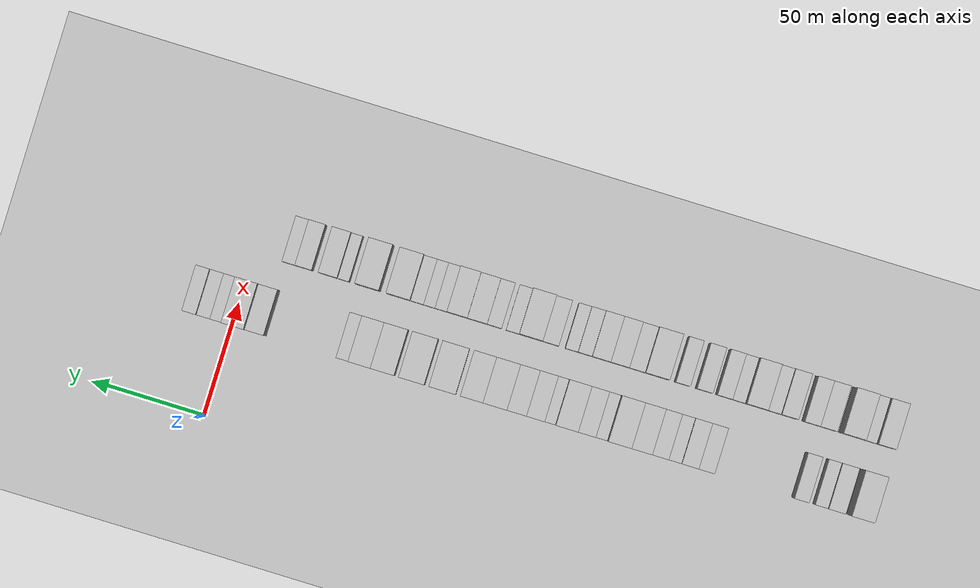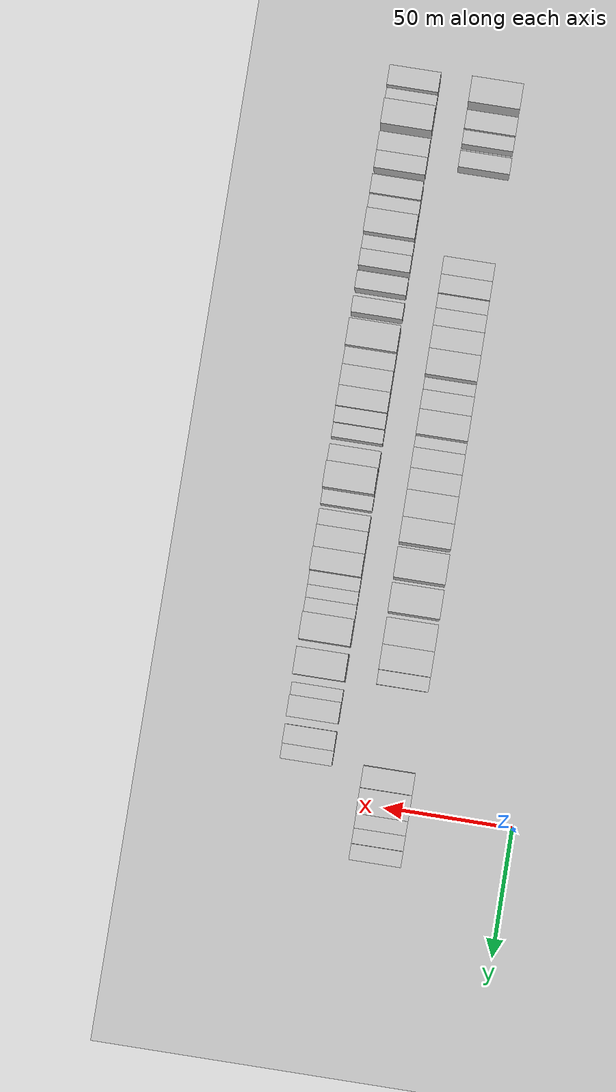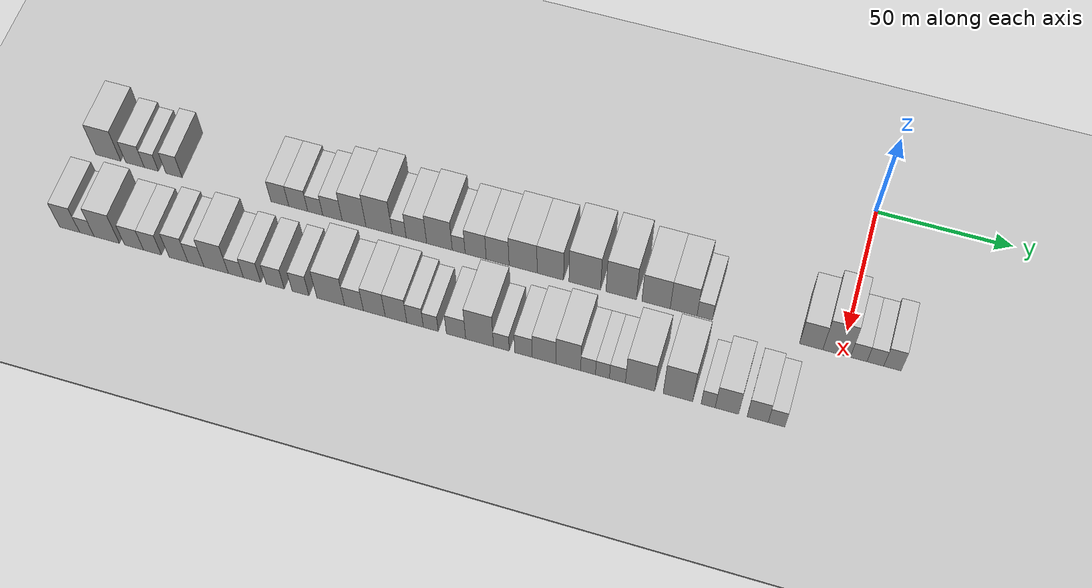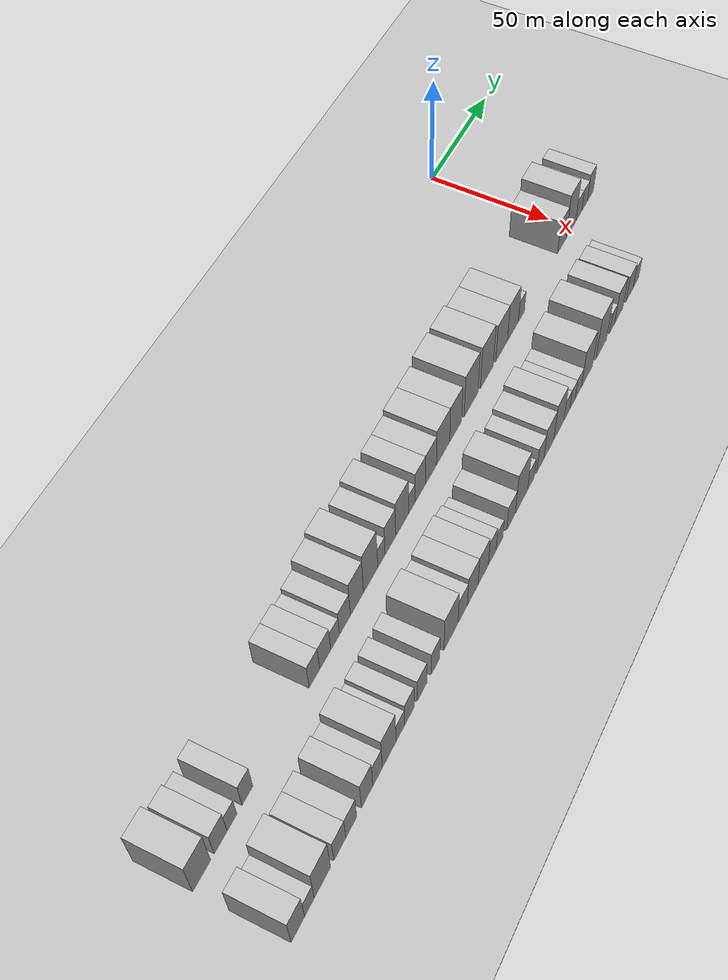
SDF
<sdf version="1.6">
 <world name="default">
  <include><name>ground_plane_1</name><uri>model://HANNAS_ground_plane</uri></include>
  <include>
   <name>ground_plane_2</name>
   <uri>model://HANNAS_ground_plane</uri>
   <pose>100 0 0  0 0 0</pose>
  </include>
  <model name="building_1">
   <static>1</static>
   <pose>50.0000 -276.9770 0 0.000000 0.000000 0.000000</pose>
   <link name="link">
    <pose>0 0 10.50 0 0 0</pose>
    <collision name="collision"><geometry><box><size>20.0000 10.0460 21.0000</size></box></geometry></collision>
    <visual name="visual">
     <cast_shadows>0</cast_shadows>
     <geometry><box><size>20.0000 10.0460 21.0000</size></box></geometry>
     <material>
      <script>
       <uri>model://HANNAS_wall/materials/scripts</uri>
       <uri>model://HANNAS_wall/materials/textures</uri>
       <name>vrc/HANNAS_wall</name>
      </script>
     </material>
    </visual>
   </link>
  </model>
  <model name="building_2">
   <static>1</static>
   <pose>50.0000 -266.2607 0 0.000000 0.000000 0.000000</pose>
   <link name="link">
    <pose>0 0 7.50 0 0 0</pose>
    <collision name="collision"><geometry><box><size>20.0000 7.3866 15.0000</size></box></geometry></collision>
    <visual name="visual">
     <cast_shadows>0</cast_shadows>
     <geometry><box><size>20.0000 7.3866 15.0000</size></box></geometry>
     <material>
      <script>
       <uri>model://HANNAS_wall/materials/scripts</uri>
       <uri>model://HANNAS_wall/materials/textures</uri>
       <name>vrc/HANNAS_wall</name>
      </script>
     </material>
    </visual>
   </link>
  </model>
  <model name="building_3">
   <static>1</static>
   <pose>50.0000 -259.7557 0 0.000000 0.000000 0.000000</pose>
   <link name="link">
    <pose>0 0 6.00 0 0 0</pose>
    <collision name="collision"><geometry><box><size>20.0000 5.6234 12.0000</size></box></geometry></collision>
    <visual name="visual">
     <cast_shadows>0</cast_shadows>
     <geometry><box><size>20.0000 5.6234 12.0000</size></box></geometry>
     <material>
      <script>
       <uri>model://HANNAS_wall/materials/scripts</uri>
       <uri>model://HANNAS_wall/materials/textures</uri>
       <name>vrc/HANNAS_wall</name>
      </script>
     </material>
    </visual>
   </link>
  </model>
  <model name="building_4">
   <static>1</static>
   <pose>50.0000 -250.7331 0 0.000000 0.000000 0.000000</pose>
   <link name="link">
    <pose>0 0 7.50 0 0 0</pose>
    <collision name="collision"><geometry><box><size>20.0000 6.4219 15.0000</size></box></geometry></collision>
    <visual name="visual">
     <cast_shadows>0</cast_shadows>
     <geometry><box><size>20.0000 6.4219 15.0000</size></box></geometry>
     <material>
      <script>
       <uri>model://HANNAS_wall/materials/scripts</uri>
       <uri>model://HANNAS_wall/materials/textures</uri>
       <name>vrc/HANNAS_wall</name>
      </script>
     </material>
    </visual>
   </link>
  </model>
  <model name="building_5">
   <static>1</static>
   <pose>50.0000 -209.0870 0 0.000000 0.000000 0.000000</pose>
   <link name="link">
    <pose>0 0 7.50 0 0 0</pose>
    <collision name="collision"><geometry><box><size>20.0000 6.9568 15.0000</size></box></geometry></collision>
    <visual name="visual">
     <cast_shadows>0</cast_shadows>
     <geometry><box><size>20.0000 6.9568 15.0000</size></box></geometry>
     <material>
      <script>
       <uri>model://HANNAS_wall/materials/scripts</uri>
       <uri>model://HANNAS_wall/materials/textures</uri>
       <name>vrc/HANNAS_wall</name>
      </script>
     </material>
    </visual>
   </link>
  </model>
  <model name="building_6">
   <static>1</static>
   <pose>50.0000 -201.9308 0 0.000000 0.000000 0.000000</pose>
   <link name="link">
    <pose>0 0 7.50 0 0 0</pose>
    <collision name="collision"><geometry><box><size>20.0000 7.3556 15.0000</size></box></geometry></collision>
    <visual name="visual">
     <cast_shadows>0</cast_shadows>
     <geometry><box><size>20.0000 7.3556 15.0000</size></box></geometry>
     <material>
      <script>
       <uri>model://HANNAS_wall/materials/scripts</uri>
       <uri>model://HANNAS_wall/materials/textures</uri>
       <name>vrc/HANNAS_wall</name>
      </script>
     </material>
    </visual>
   </link>
  </model>
  <model name="building_7">
   <static>1</static>
   <pose>50.0000 -195.3391 0 0.000000 0.000000 0.000000</pose>
   <link name="link">
    <pose>0 0 6.00 0 0 0</pose>
    <collision name="collision"><geometry><box><size>20.0000 5.8279 12.0000</size></box></geometry></collision>
    <visual name="visual">
     <cast_shadows>0</cast_shadows>
     <geometry><box><size>20.0000 5.8279 12.0000</size></box></geometry>
     <material>
      <script>
       <uri>model://HANNAS_wall/materials/scripts</uri>
       <uri>model://HANNAS_wall/materials/textures</uri>
       <name>vrc/HANNAS_wall</name>
      </script>
     </material>
    </visual>
   </link>
  </model>
  <model name="building_8">
   <static>1</static>
   <pose>50.0000 -188.6798 0 0.000000 0.000000 0.000000</pose>
   <link name="link">
    <pose>0 0 7.50 0 0 0</pose>
    <collision name="collision"><geometry><box><size>20.0000 7.4907 15.0000</size></box></geometry></collision>
    <visual name="visual">
     <cast_shadows>0</cast_shadows>
     <geometry><box><size>20.0000 7.4907 15.0000</size></box></geometry>
     <material>
      <script>
       <uri>model://HANNAS_wall/materials/scripts</uri>
       <uri>model://HANNAS_wall/materials/textures</uri>
       <name>vrc/HANNAS_wall</name>
      </script>
     </material>
    </visual>
   </link>
  </model>
  <model name="building_9">
   <static>1</static>
   <pose>50.0000 -180.3586 0 0.000000 0.000000 0.000000</pose>
   <link name="link">
    <pose>0 0 10.50 0 0 0</pose>
    <collision name="collision"><geometry><box><size>20.0000 9.1517 21.0000</size></box></geometry></collision>
    <visual name="visual">
     <cast_shadows>0</cast_shadows>
     <geometry><box><size>20.0000 9.1517 21.0000</size></box></geometry>
     <material>
      <script>
       <uri>model://HANNAS_wall/materials/scripts</uri>
       <uri>model://HANNAS_wall/materials/textures</uri>
       <name>vrc/HANNAS_wall</name>
      </script>
     </material>
    </visual>
   </link>
  </model>
  <model name="building_10">
   <static>1</static>
   <pose>50.0000 -170.7274 0 0.000000 0.000000 0.000000</pose>
   <link name="link">
    <pose>0 0 12.00 0 0 0</pose>
    <collision name="collision"><geometry><box><size>20.0000 10.1106 24.0000</size></box></geometry></collision>
    <visual name="visual">
     <cast_shadows>0</cast_shadows>
     <geometry><box><size>20.0000 10.1106 24.0000</size></box></geometry>
     <material>
      <script>
       <uri>model://HANNAS_wall/materials/scripts</uri>
       <uri>model://HANNAS_wall/materials/textures</uri>
       <name>vrc/HANNAS_wall</name>
      </script>
     </material>
    </visual>
   </link>
  </model>
  <model name="building_11">
   <static>1</static>
   <pose>50.0000 -163.0264 0 0.000000 0.000000 0.000000</pose>
   <link name="link">
    <pose>0 0 6.00 0 0 0</pose>
    <collision name="collision"><geometry><box><size>20.0000 5.2915 12.0000</size></box></geometry></collision>
    <visual name="visual">
     <cast_shadows>0</cast_shadows>
     <geometry><box><size>20.0000 5.2915 12.0000</size></box></geometry>
     <material>
      <script>
       <uri>model://HANNAS_wall/materials/scripts</uri>
       <uri>model://HANNAS_wall/materials/textures</uri>
       <name>vrc/HANNAS_wall</name>
      </script>
     </material>
    </visual>
   </link>
  </model>
  <model name="building_12">
   <static>1</static>
   <pose>50.0000 -156.4857 0 0.000000 0.000000 0.000000</pose>
   <link name="link">
    <pose>0 0 9.00 0 0 0</pose>
    <collision name="collision"><geometry><box><size>20.0000 7.7898 18.0000</size></box></geometry></collision>
    <visual name="visual">
     <cast_shadows>0</cast_shadows>
     <geometry><box><size>20.0000 7.7898 18.0000</size></box></geometry>
     <material>
      <script>
       <uri>model://HANNAS_wall/materials/scripts</uri>
       <uri>model://HANNAS_wall/materials/textures</uri>
       <name>vrc/HANNAS_wall</name>
      </script>
     </material>
    </visual>
   </link>
  </model>
  <model name="building_13">
   <static>1</static>
   <pose>50.0000 -147.7321 0 0.000000 0.000000 0.000000</pose>
   <link name="link">
    <pose>0 0 10.50 0 0 0</pose>
    <collision name="collision"><geometry><box><size>20.0000 9.7174 21.0000</size></box></geometry></collision>
    <visual name="visual">
     <cast_shadows>0</cast_shadows>
     <geometry><box><size>20.0000 9.7174 21.0000</size></box></geometry>
     <material>
      <script>
       <uri>model://HANNAS_wall/materials/scripts</uri>
       <uri>model://HANNAS_wall/materials/textures</uri>
       <name>vrc/HANNAS_wall</name>
      </script>
     </material>
    </visual>
   </link>
  </model>
  <model name="building_14">
   <static>1</static>
   <pose>50.0000 -140.4403 0 0.000000 0.000000 0.000000</pose>
   <link name="link">
    <pose>0 0 6.00 0 0 0</pose>
    <collision name="collision"><geometry><box><size>20.0000 4.8661 12.0000</size></box></geometry></collision>
    <visual name="visual">
     <cast_shadows>0</cast_shadows>
     <geometry><box><size>20.0000 4.8661 12.0000</size></box></geometry>
     <material>
      <script>
       <uri>model://HANNAS_wall/materials/scripts</uri>
       <uri>model://HANNAS_wall/materials/textures</uri>
       <name>vrc/HANNAS_wall</name>
      </script>
     </material>
    </visual>
   </link>
  </model>
  <model name="building_15">
   <static>1</static>
   <pose>50.0000 -134.0375 0 0.000000 0.000000 0.000000</pose>
   <link name="link">
    <pose>0 0 9.00 0 0 0</pose>
    <collision name="collision"><geometry><box><size>20.0000 7.9396 18.0000</size></box></geometry></collision>
    <visual name="visual">
     <cast_shadows>0</cast_shadows>
     <geometry><box><size>20.0000 7.9396 18.0000</size></box></geometry>
     <material>
      <script>
       <uri>model://HANNAS_wall/materials/scripts</uri>
       <uri>model://HANNAS_wall/materials/textures</uri>
       <name>vrc/HANNAS_wall</name>
      </script>
     </material>
    </visual>
   </link>
  </model>
  <model name="building_16">
   <static>1</static>
   <pose>50.0000 -125.7785 0 0.000000 0.000000 0.000000</pose>
   <link name="link">
    <pose>0 0 9.00 0 0 0</pose>
    <collision name="collision"><geometry><box><size>20.0000 8.5782 18.0000</size></box></geometry></collision>
    <visual name="visual">
     <cast_shadows>0</cast_shadows>
     <geometry><box><size>20.0000 8.5782 18.0000</size></box></geometry>
     <material>
      <script>
       <uri>model://HANNAS_wall/materials/scripts</uri>
       <uri>model://HANNAS_wall/materials/textures</uri>
       <name>vrc/HANNAS_wall</name>
      </script>
     </material>
    </visual>
   </link>
  </model>
  <model name="building_17">
   <static>1</static>
   <pose>50.0000 -116.2439 0 0.000000 0.000000 0.000000</pose>
   <link name="link">
    <pose>0 0 10.50 0 0 0</pose>
    <collision name="collision"><geometry><box><size>20.0000 10.4910 21.0000</size></box></geometry></collision>
    <visual name="visual">
     <cast_shadows>0</cast_shadows>
     <geometry><box><size>20.0000 10.4910 21.0000</size></box></geometry>
     <material>
      <script>
       <uri>model://HANNAS_wall/materials/scripts</uri>
       <uri>model://HANNAS_wall/materials/textures</uri>
       <name>vrc/HANNAS_wall</name>
      </script>
     </material>
    </visual>
   </link>
  </model>
  <model name="building_18">
   <static>1</static>
   <pose>50.0000 -106.0777 0 0.000000 0.000000 0.000000</pose>
   <link name="link">
    <pose>0 0 10.50 0 0 0</pose>
    <collision name="collision"><geometry><box><size>20.0000 9.8415 21.0000</size></box></geometry></collision>
    <visual name="visual">
     <cast_shadows>0</cast_shadows>
     <geometry><box><size>20.0000 9.8415 21.0000</size></box></geometry>
     <material>
      <script>
       <uri>model://HANNAS_wall/materials/scripts</uri>
       <uri>model://HANNAS_wall/materials/textures</uri>
       <name>vrc/HANNAS_wall</name>
      </script>
     </material>
    </visual>
   </link>
  </model>
  <model name="building_19">
   <static>1</static>
   <pose>50.0000 -93.3083 0 0.000000 0.000000 0.000000</pose>
   <link name="link">
    <pose>0 0 12.00 0 0 0</pose>
    <collision name="collision"><geometry><box><size>20.0000 11.6972 24.0000</size></box></geometry></collision>
    <visual name="visual">
     <cast_shadows>0</cast_shadows>
     <geometry><box><size>20.0000 11.6972 24.0000</size></box></geometry>
     <material>
      <script>
       <uri>model://HANNAS_wall/materials/scripts</uri>
       <uri>model://HANNAS_wall/materials/textures</uri>
       <name>vrc/HANNAS_wall</name>
      </script>
     </material>
    </visual>
   </link>
  </model>
  <model name="building_20">
   <static>1</static>
   <pose>50.0000 -79.8565 0 0.000000 0.000000 0.000000</pose>
   <link name="link">
    <pose>0 0 12.00 0 0 0</pose>
    <collision name="collision"><geometry><box><size>20.0000 11.2065 24.0000</size></box></geometry></collision>
    <visual name="visual">
     <cast_shadows>0</cast_shadows>
     <geometry><box><size>20.0000 11.2065 24.0000</size></box></geometry>
     <material>
      <script>
       <uri>model://HANNAS_wall/materials/scripts</uri>
       <uri>model://HANNAS_wall/materials/textures</uri>
       <name>vrc/HANNAS_wall</name>
      </script>
     </material>
    </visual>
   </link>
  </model>
  <model name="building_21">
   <static>1</static>
   <pose>50.0000 -67.0603 0 0.000000 0.000000 0.000000</pose>
   <link name="link">
    <pose>0 0 10.50 0 0 0</pose>
    <collision name="collision"><geometry><box><size>20.0000 10.3857 21.0000</size></box></geometry></collision>
    <visual name="visual">
     <cast_shadows>0</cast_shadows>
     <geometry><box><size>20.0000 10.3857 21.0000</size></box></geometry>
     <material>
      <script>
       <uri>model://HANNAS_wall/materials/scripts</uri>
       <uri>model://HANNAS_wall/materials/textures</uri>
       <name>vrc/HANNAS_wall</name>
      </script>
     </material>
    </visual>
   </link>
  </model>
  <model name="building_22">
   <static>1</static>
   <pose>50.0000 -57.0020 0 0.000000 0.000000 0.000000</pose>
   <link name="link">
    <pose>0 0 10.50 0 0 0</pose>
    <collision name="collision"><geometry><box><size>20.0000 9.7309 21.0000</size></box></geometry></collision>
    <visual name="visual">
     <cast_shadows>0</cast_shadows>
     <geometry><box><size>20.0000 9.7309 21.0000</size></box></geometry>
     <material>
      <script>
       <uri>model://HANNAS_wall/materials/scripts</uri>
       <uri>model://HANNAS_wall/materials/textures</uri>
       <name>vrc/HANNAS_wall</name>
      </script>
     </material>
    </visual>
   </link>
  </model>
  <model name="building_23">
   <static>1</static>
   <pose>50.0000 -49.3145 0 0.000000 0.000000 0.000000</pose>
   <link name="link">
    <pose>0 0 6.00 0 0 0</pose>
    <collision name="collision"><geometry><box><size>20.0000 5.6441 12.0000</size></box></geometry></collision>
    <visual name="visual">
     <cast_shadows>0</cast_shadows>
     <geometry><box><size>20.0000 5.6441 12.0000</size></box></geometry>
     <material>
      <script>
       <uri>model://HANNAS_wall/materials/scripts</uri>
       <uri>model://HANNAS_wall/materials/textures</uri>
       <name>vrc/HANNAS_wall</name>
      </script>
     </material>
    </visual>
   </link>
  </model>
  <model name="building_24">
   <static>1</static>
   <pose>50.0000 -11.0060 0 0.000000 0.000000 0.000000</pose>
   <link name="link">
    <pose>0 0 9.00 0 0 0</pose>
    <collision name="collision"><geometry><box><size>20.0000 8.3243 18.0000</size></box></geometry></collision>
    <visual name="visual">
     <cast_shadows>0</cast_shadows>
     <geometry><box><size>20.0000 8.3243 18.0000</size></box></geometry>
     <material>
      <script>
       <uri>model://HANNAS_wall/materials/scripts</uri>
       <uri>model://HANNAS_wall/materials/textures</uri>
       <name>vrc/HANNAS_wall</name>
      </script>
     </material>
    </visual>
   </link>
  </model>
  <model name="building_25">
   <static>1</static>
   <pose>50.0000 -1.9541 0 0.000000 0.000000 0.000000</pose>
   <link name="link">
    <pose>0 0 12.00 0 0 0</pose>
    <collision name="collision"><geometry><box><size>20.0000 9.7796 24.0000</size></box></geometry></collision>
    <visual name="visual">
     <cast_shadows>0</cast_shadows>
     <geometry><box><size>20.0000 9.7796 24.0000</size></box></geometry>
     <material>
      <script>
       <uri>model://HANNAS_wall/materials/scripts</uri>
       <uri>model://HANNAS_wall/materials/textures</uri>
       <name>vrc/HANNAS_wall</name>
      </script>
     </material>
    </visual>
   </link>
  </model>
  <model name="building_26">
   <static>1</static>
   <pose>50.0000 5.8931 0 0.000000 0.000000 0.000000</pose>
   <link name="link">
    <pose>0 0 6.00 0 0 0</pose>
    <collision name="collision"><geometry><box><size>20.0000 5.9147 12.0000</size></box></geometry></collision>
    <visual name="visual">
     <cast_shadows>0</cast_shadows>
     <geometry><box><size>20.0000 5.9147 12.0000</size></box></geometry>
     <material>
      <script>
       <uri>model://HANNAS_wall/materials/scripts</uri>
       <uri>model://HANNAS_wall/materials/textures</uri>
       <name>vrc/HANNAS_wall</name>
      </script>
     </material>
    </visual>
   </link>
  </model>
  <model name="building_27">
   <static>1</static>
   <pose>50.0000 11.8001 0 0.000000 0.000000 0.000000</pose>
   <link name="link">
    <pose>0 0 6.00 0 0 0</pose>
    <collision name="collision"><geometry><box><size>20.0000 5.8994 12.0000</size></box></geometry></collision>
    <visual name="visual">
     <cast_shadows>0</cast_shadows>
     <geometry><box><size>20.0000 5.8994 12.0000</size></box></geometry>
     <material>
      <script>
       <uri>model://HANNAS_wall/materials/scripts</uri>
       <uri>model://HANNAS_wall/materials/textures</uri>
       <name>vrc/HANNAS_wall</name>
      </script>
     </material>
    </visual>
   </link>
  </model>
  <model name="building_28">
   <static>1</static>
   <pose>50.0000 17.8143 0 0.000000 0.000000 0.000000</pose>
   <link name="link">
    <pose>0 0 7.50 0 0 0</pose>
    <collision name="collision"><geometry><box><size>20.0000 6.1291 15.0000</size></box></geometry></collision>
    <visual name="visual">
     <cast_shadows>0</cast_shadows>
     <geometry><box><size>20.0000 6.1291 15.0000</size></box></geometry>
     <material>
      <script>
       <uri>model://HANNAS_wall/materials/scripts</uri>
       <uri>model://HANNAS_wall/materials/textures</uri>
       <name>vrc/HANNAS_wall</name>
      </script>
     </material>
    </visual>
   </link>
  </model>
  <model name="building_58">
   <static>1</static>
   <pose>82.0000 -278.0682 0 0.000000 0.000000 0.000000</pose>
   <link name="link">
    <pose>0 0 9.00 0 0 0</pose>
    <collision name="collision"><geometry><box><size>20.0000 7.8635 18.0000</size></box></geometry></collision>
    <visual name="visual">
     <cast_shadows>0</cast_shadows>
     <geometry><box><size>20.0000 7.8635 18.0000</size></box></geometry>
     <material>
      <script>
       <uri>model://HANNAS_wall/materials/scripts</uri>
       <uri>model://HANNAS_wall/materials/textures</uri>
       <name>vrc/HANNAS_wall</name>
      </script>
     </material>
    </visual>
   </link>
  </model>
  <model name="building_59">
   <static>1</static>
   <pose>82.0000 -271.2722 0 0.000000 0.000000 0.000000</pose>
   <link name="link">
    <pose>0 0 6.00 0 0 0</pose>
    <collision name="collision"><geometry><box><size>20.0000 5.7285 12.0000</size></box></geometry></collision>
    <visual name="visual">
     <cast_shadows>0</cast_shadows>
     <geometry><box><size>20.0000 5.7285 12.0000</size></box></geometry>
     <material>
      <script>
       <uri>model://HANNAS_wall/materials/scripts</uri>
       <uri>model://HANNAS_wall/materials/textures</uri>
       <name>vrc/HANNAS_wall</name>
      </script>
     </material>
    </visual>
   </link>
  </model>
  <model name="building_60">
   <static>1</static>
   <pose>82.0000 -263.4892 0 0.000000 0.000000 0.000000</pose>
   <link name="link">
    <pose>0 0 10.50 0 0 0</pose>
    <collision name="collision"><geometry><box><size>20.0000 9.8376 21.0000</size></box></geometry></collision>
    <visual name="visual">
     <cast_shadows>0</cast_shadows>
     <geometry><box><size>20.0000 9.8376 21.0000</size></box></geometry>
     <material>
      <script>
       <uri>model://HANNAS_wall/materials/scripts</uri>
       <uri>model://HANNAS_wall/materials/textures</uri>
       <name>vrc/HANNAS_wall</name>
      </script>
     </material>
    </visual>
   </link>
  </model>
  <model name="building_61">
   <static>1</static>
   <pose>82.0000 -252.8622 0 0.000000 0.000000 0.000000</pose>
   <link name="link">
    <pose>0 0 7.50 0 0 0</pose>
    <collision name="collision"><geometry><box><size>20.0000 7.4164 15.0000</size></box></geometry></collision>
    <visual name="visual">
     <cast_shadows>0</cast_shadows>
     <geometry><box><size>20.0000 7.4164 15.0000</size></box></geometry>
     <material>
      <script>
       <uri>model://HANNAS_wall/materials/scripts</uri>
       <uri>model://HANNAS_wall/materials/textures</uri>
       <name>vrc/HANNAS_wall</name>
      </script>
     </material>
    </visual>
   </link>
  </model>
  <model name="building_62">
   <static>1</static>
   <pose>82.0000 -245.7006 0 0.000000 0.000000 0.000000</pose>
   <link name="link">
    <pose>0 0 7.50 0 0 0</pose>
    <collision name="collision"><geometry><box><size>20.0000 6.9069 15.0000</size></box></geometry></collision>
    <visual name="visual">
     <cast_shadows>0</cast_shadows>
     <geometry><box><size>20.0000 6.9069 15.0000</size></box></geometry>
     <material>
      <script>
       <uri>model://HANNAS_wall/materials/scripts</uri>
       <uri>model://HANNAS_wall/materials/textures</uri>
       <name>vrc/HANNAS_wall</name>
      </script>
     </material>
    </visual>
   </link>
  </model>
  <model name="building_63">
   <static>1</static>
   <pose>82.0000 -235.5876 0 0.000000 0.000000 0.000000</pose>
   <link name="link">
    <pose>0 0 9.00 0 0 0</pose>
    <collision name="collision"><geometry><box><size>20.0000 7.3191 18.0000</size></box></geometry></collision>
    <visual name="visual">
     <cast_shadows>0</cast_shadows>
     <geometry><box><size>20.0000 7.3191 18.0000</size></box></geometry>
     <material>
      <script>
       <uri>model://HANNAS_wall/materials/scripts</uri>
       <uri>model://HANNAS_wall/materials/textures</uri>
       <name>vrc/HANNAS_wall</name>
      </script>
     </material>
    </visual>
   </link>
  </model>
  <model name="building_64">
   <static>1</static>
   <pose>82.0000 -228.8439 0 0.000000 0.000000 0.000000</pose>
   <link name="link">
    <pose>0 0 7.50 0 0 0</pose>
    <collision name="collision"><geometry><box><size>20.0000 6.1682 15.0000</size></box></geometry></collision>
    <visual name="visual">
     <cast_shadows>0</cast_shadows>
     <geometry><box><size>20.0000 6.1682 15.0000</size></box></geometry>
     <material>
      <script>
       <uri>model://HANNAS_wall/materials/scripts</uri>
       <uri>model://HANNAS_wall/materials/textures</uri>
       <name>vrc/HANNAS_wall</name>
      </script>
     </material>
    </visual>
   </link>
  </model>
  <model name="building_65">
   <static>1</static>
   <pose>82.0000 -221.0918 0 0.000000 0.000000 0.000000</pose>
   <link name="link">
    <pose>0 0 10.50 0 0 0</pose>
    <collision name="collision"><geometry><box><size>20.0000 9.3360 21.0000</size></box></geometry></collision>
    <visual name="visual">
     <cast_shadows>0</cast_shadows>
     <geometry><box><size>20.0000 9.3360 21.0000</size></box></geometry>
     <material>
      <script>
       <uri>model://HANNAS_wall/materials/scripts</uri>
       <uri>model://HANNAS_wall/materials/textures</uri>
       <name>vrc/HANNAS_wall</name>
      </script>
     </material>
    </visual>
   </link>
  </model>
  <model name="building_66">
   <static>1</static>
   <pose>82.0000 -213.5347 0 0.000000 0.000000 0.000000</pose>
   <link name="link">
    <pose>0 0 6.00 0 0 0</pose>
    <collision name="collision"><geometry><box><size>20.0000 5.7783 12.0000</size></box></geometry></collision>
    <visual name="visual">
     <cast_shadows>0</cast_shadows>
     <geometry><box><size>20.0000 5.7783 12.0000</size></box></geometry>
     <material>
      <script>
       <uri>model://HANNAS_wall/materials/scripts</uri>
       <uri>model://HANNAS_wall/materials/textures</uri>
       <name>vrc/HANNAS_wall</name>
      </script>
     </material>
    </visual>
   </link>
  </model>
  <model name="building_67">
   <static>1</static>
   <pose>82.0000 -207.3353 0 0.000000 0.000000 0.000000</pose>
   <link name="link">
    <pose>0 0 7.50 0 0 0</pose>
    <collision name="collision"><geometry><box><size>20.0000 6.6205 15.0000</size></box></geometry></collision>
    <visual name="visual">
     <cast_shadows>0</cast_shadows>
     <geometry><box><size>20.0000 6.6205 15.0000</size></box></geometry>
     <material>
      <script>
       <uri>model://HANNAS_wall/materials/scripts</uri>
       <uri>model://HANNAS_wall/materials/textures</uri>
       <name>vrc/HANNAS_wall</name>
      </script>
     </material>
    </visual>
   </link>
  </model>
  <model name="building_68">
   <static>1</static>
   <pose>82.0000 -198.5654 0 0.000000 0.000000 0.000000</pose>
   <link name="link">
    <pose>0 0 7.50 0 0 0</pose>
    <collision name="collision"><geometry><box><size>20.0000 6.9194 15.0000</size></box></geometry></collision>
    <visual name="visual">
     <cast_shadows>0</cast_shadows>
     <geometry><box><size>20.0000 6.9194 15.0000</size></box></geometry>
     <material>
      <script>
       <uri>model://HANNAS_wall/materials/scripts</uri>
       <uri>model://HANNAS_wall/materials/textures</uri>
       <name>vrc/HANNAS_wall</name>
      </script>
     </material>
    </visual>
   </link>
  </model>
  <model name="building_69">
   <static>1</static>
   <pose>82.0000 -188.9436 0 0.000000 0.000000 0.000000</pose>
   <link name="link">
    <pose>0 0 7.50 0 0 0</pose>
    <collision name="collision"><geometry><box><size>20.0000 6.3242 15.0000</size></box></geometry></collision>
    <visual name="visual">
     <cast_shadows>0</cast_shadows>
     <geometry><box><size>20.0000 6.3242 15.0000</size></box></geometry>
     <material>
      <script>
       <uri>model://HANNAS_wall/materials/scripts</uri>
       <uri>model://HANNAS_wall/materials/textures</uri>
       <name>vrc/HANNAS_wall</name>
      </script>
     </material>
    </visual>
   </link>
  </model>
  <model name="building_70">
   <static>1</static>
   <pose>82.0000 -177.5615 0 0.000000 0.000000 0.000000</pose>
   <link name="link">
    <pose>0 0 10.50 0 0 0</pose>
    <collision name="collision"><geometry><box><size>20.0000 10.4400 21.0000</size></box></geometry></collision>
    <visual name="visual">
     <cast_shadows>0</cast_shadows>
     <geometry><box><size>20.0000 10.4400 21.0000</size></box></geometry>
     <material>
      <script>
       <uri>model://HANNAS_wall/materials/scripts</uri>
       <uri>model://HANNAS_wall/materials/textures</uri>
       <name>vrc/HANNAS_wall</name>
      </script>
     </material>
    </visual>
   </link>
  </model>
  <model name="building_71">
   <static>1</static>
   <pose>82.0000 -168.8144 0 0.000000 0.000000 0.000000</pose>
   <link name="link">
    <pose>0 0 7.50 0 0 0</pose>
    <collision name="collision"><geometry><box><size>20.0000 7.0541 15.0000</size></box></geometry></collision>
    <visual name="visual">
     <cast_shadows>0</cast_shadows>
     <geometry><box><size>20.0000 7.0541 15.0000</size></box></geometry>
     <material>
      <script>
       <uri>model://HANNAS_wall/materials/scripts</uri>
       <uri>model://HANNAS_wall/materials/textures</uri>
       <name>vrc/HANNAS_wall</name>
      </script>
     </material>
    </visual>
   </link>
  </model>
  <model name="building_72">
   <static>1</static>
   <pose>82.0000 -161.2162 0 0.000000 0.000000 0.000000</pose>
   <link name="link">
    <pose>0 0 9.00 0 0 0</pose>
    <collision name="collision"><geometry><box><size>20.0000 8.1423 18.0000</size></box></geometry></collision>
    <visual name="visual">
     <cast_shadows>0</cast_shadows>
     <geometry><box><size>20.0000 8.1423 18.0000</size></box></geometry>
     <material>
      <script>
       <uri>model://HANNAS_wall/materials/scripts</uri>
       <uri>model://HANNAS_wall/materials/textures</uri>
       <name>vrc/HANNAS_wall</name>
      </script>
     </material>
    </visual>
   </link>
  </model>
  <model name="building_73">
   <static>1</static>
   <pose>82.0000 -153.1271 0 0.000000 0.000000 0.000000</pose>
   <link name="link">
    <pose>0 0 9.00 0 0 0</pose>
    <collision name="collision"><geometry><box><size>20.0000 8.0360 18.0000</size></box></geometry></collision>
    <visual name="visual">
     <cast_shadows>0</cast_shadows>
     <geometry><box><size>20.0000 8.0360 18.0000</size></box></geometry>
     <material>
      <script>
       <uri>model://HANNAS_wall/materials/scripts</uri>
       <uri>model://HANNAS_wall/materials/textures</uri>
       <name>vrc/HANNAS_wall</name>
      </script>
     </material>
    </visual>
   </link>
  </model>
  <model name="building_74">
   <static>1</static>
   <pose>82.0000 -146.0359 0 0.000000 0.000000 0.000000</pose>
   <link name="link">
    <pose>0 0 7.50 0 0 0</pose>
    <collision name="collision"><geometry><box><size>20.0000 6.1462 15.0000</size></box></geometry></collision>
    <visual name="visual">
     <cast_shadows>0</cast_shadows>
     <geometry><box><size>20.0000 6.1462 15.0000</size></box></geometry>
     <material>
      <script>
       <uri>model://HANNAS_wall/materials/scripts</uri>
       <uri>model://HANNAS_wall/materials/textures</uri>
       <name>vrc/HANNAS_wall</name>
      </script>
     </material>
    </visual>
   </link>
  </model>
  <model name="building_75">
   <static>1</static>
   <pose>82.0000 -140.2134 0 0.000000 0.000000 0.000000</pose>
   <link name="link">
    <pose>0 0 6.00 0 0 0</pose>
    <collision name="collision"><geometry><box><size>20.0000 5.4988 12.0000</size></box></geometry></collision>
    <visual name="visual">
     <cast_shadows>0</cast_shadows>
     <geometry><box><size>20.0000 5.4988 12.0000</size></box></geometry>
     <material>
      <script>
       <uri>model://HANNAS_wall/materials/scripts</uri>
       <uri>model://HANNAS_wall/materials/textures</uri>
       <name>vrc/HANNAS_wall</name>
      </script>
     </material>
    </visual>
   </link>
  </model>
  <model name="building_76">
   <static>1</static>
   <pose>82.0000 -130.9095 0 0.000000 0.000000 0.000000</pose>
   <link name="link">
    <pose>0 0 7.50 0 0 0</pose>
    <collision name="collision"><geometry><box><size>20.0000 7.1091 15.0000</size></box></geometry></collision>
    <visual name="visual">
     <cast_shadows>0</cast_shadows>
     <geometry><box><size>20.0000 7.1091 15.0000</size></box></geometry>
     <material>
      <script>
       <uri>model://HANNAS_wall/materials/scripts</uri>
       <uri>model://HANNAS_wall/materials/textures</uri>
       <name>vrc/HANNAS_wall</name>
      </script>
     </material>
    </visual>
   </link>
  </model>
  <model name="building_77">
   <static>1</static>
   <pose>82.0000 -122.2556 0 0.000000 0.000000 0.000000</pose>
   <link name="link">
    <pose>0 0 12.00 0 0 0</pose>
    <collision name="collision"><geometry><box><size>20.0000 10.1987 24.0000</size></box></geometry></collision>
    <visual name="visual">
     <cast_shadows>0</cast_shadows>
     <geometry><box><size>20.0000 10.1987 24.0000</size></box></geometry>
     <material>
      <script>
       <uri>model://HANNAS_wall/materials/scripts</uri>
       <uri>model://HANNAS_wall/materials/textures</uri>
       <name>vrc/HANNAS_wall</name>
      </script>
     </material>
    </visual>
   </link>
  </model>
  <model name="building_78">
   <static>1</static>
   <pose>82.0000 -114.2787 0 0.000000 0.000000 0.000000</pose>
   <link name="link">
    <pose>0 0 6.00 0 0 0</pose>
    <collision name="collision"><geometry><box><size>20.0000 5.7551 12.0000</size></box></geometry></collision>
    <visual name="visual">
     <cast_shadows>0</cast_shadows>
     <geometry><box><size>20.0000 5.7551 12.0000</size></box></geometry>
     <material>
      <script>
       <uri>model://HANNAS_wall/materials/scripts</uri>
       <uri>model://HANNAS_wall/materials/textures</uri>
       <name>vrc/HANNAS_wall</name>
      </script>
     </material>
    </visual>
   </link>
  </model>
  <model name="building_79">
   <static>1</static>
   <pose>82.0000 -106.2372 0 0.000000 0.000000 0.000000</pose>
   <link name="link">
    <pose>0 0 7.50 0 0 0</pose>
    <collision name="collision"><geometry><box><size>20.0000 6.3278 15.0000</size></box></geometry></collision>
    <visual name="visual">
     <cast_shadows>0</cast_shadows>
     <geometry><box><size>20.0000 6.3278 15.0000</size></box></geometry>
     <material>
      <script>
       <uri>model://HANNAS_wall/materials/scripts</uri>
       <uri>model://HANNAS_wall/materials/textures</uri>
       <name>vrc/HANNAS_wall</name>
      </script>
     </material>
    </visual>
   </link>
  </model>
  <model name="building_80">
   <static>1</static>
   <pose>82.0000 -98.7520 0 0.000000 0.000000 0.000000</pose>
   <link name="link">
    <pose>0 0 9.00 0 0 0</pose>
    <collision name="collision"><geometry><box><size>20.0000 8.6426 18.0000</size></box></geometry></collision>
    <visual name="visual">
     <cast_shadows>0</cast_shadows>
     <geometry><box><size>20.0000 8.6426 18.0000</size></box></geometry>
     <material>
      <script>
       <uri>model://HANNAS_wall/materials/scripts</uri>
       <uri>model://HANNAS_wall/materials/textures</uri>
       <name>vrc/HANNAS_wall</name>
      </script>
     </material>
    </visual>
   </link>
  </model>
  <model name="building_81">
   <static>1</static>
   <pose>82.0000 -89.9632 0 0.000000 0.000000 0.000000</pose>
   <link name="link">
    <pose>0 0 10.50 0 0 0</pose>
    <collision name="collision"><geometry><box><size>20.0000 8.9351 21.0000</size></box></geometry></collision>
    <visual name="visual">
     <cast_shadows>0</cast_shadows>
     <geometry><box><size>20.0000 8.9351 21.0000</size></box></geometry>
     <material>
      <script>
       <uri>model://HANNAS_wall/materials/scripts</uri>
       <uri>model://HANNAS_wall/materials/textures</uri>
       <name>vrc/HANNAS_wall</name>
      </script>
     </material>
    </visual>
   </link>
  </model>
  <model name="building_82">
   <static>1</static>
   <pose>82.0000 -82.8178 0 0.000000 0.000000 0.000000</pose>
   <link name="link">
    <pose>0 0 6.00 0 0 0</pose>
    <collision name="collision"><geometry><box><size>20.0000 5.3557 12.0000</size></box></geometry></collision>
    <visual name="visual">
     <cast_shadows>0</cast_shadows>
     <geometry><box><size>20.0000 5.3557 12.0000</size></box></geometry>
     <material>
      <script>
       <uri>model://HANNAS_wall/materials/scripts</uri>
       <uri>model://HANNAS_wall/materials/textures</uri>
       <name>vrc/HANNAS_wall</name>
      </script>
     </material>
    </visual>
   </link>
  </model>
  <model name="building_83">
   <static>1</static>
   <pose>82.0000 -77.6293 0 0.000000 0.000000 0.000000</pose>
   <link name="link">
    <pose>0 0 6.00 0 0 0</pose>
    <collision name="collision"><geometry><box><size>20.0000 5.0212 12.0000</size></box></geometry></collision>
    <visual name="visual">
     <cast_shadows>0</cast_shadows>
     <geometry><box><size>20.0000 5.0212 12.0000</size></box></geometry>
     <material>
      <script>
       <uri>model://HANNAS_wall/materials/scripts</uri>
       <uri>model://HANNAS_wall/materials/textures</uri>
       <name>vrc/HANNAS_wall</name>
      </script>
     </material>
    </visual>
   </link>
  </model>
  <model name="building_84">
   <static>1</static>
   <pose>82.0000 -72.2517 0 0.000000 0.000000 0.000000</pose>
   <link name="link">
    <pose>0 0 6.00 0 0 0</pose>
    <collision name="collision"><geometry><box><size>20.0000 5.7340 12.0000</size></box></geometry></collision>
    <visual name="visual">
     <cast_shadows>0</cast_shadows>
     <geometry><box><size>20.0000 5.7340 12.0000</size></box></geometry>
     <material>
      <script>
       <uri>model://HANNAS_wall/materials/scripts</uri>
       <uri>model://HANNAS_wall/materials/textures</uri>
       <name>vrc/HANNAS_wall</name>
      </script>
     </material>
    </visual>
   </link>
  </model>
  <model name="building_85">
   <static>1</static>
   <pose>82.0000 -64.1401 0 0.000000 0.000000 0.000000</pose>
   <link name="link">
    <pose>0 0 10.50 0 0 0</pose>
    <collision name="collision"><geometry><box><size>20.0000 10.4892 21.0000</size></box></geometry></collision>
    <visual name="visual">
     <cast_shadows>0</cast_shadows>
     <geometry><box><size>20.0000 10.4892 21.0000</size></box></geometry>
     <material>
      <script>
       <uri>model://HANNAS_wall/materials/scripts</uri>
       <uri>model://HANNAS_wall/materials/textures</uri>
       <name>vrc/HANNAS_wall</name>
      </script>
     </material>
    </visual>
   </link>
  </model>
  <model name="building_86">
   <static>1</static>
   <pose>82.0000 -50.6469 0 0.000000 0.000000 0.000000</pose>
   <link name="link">
    <pose>0 0 12.00 0 0 0</pose>
    <collision name="collision"><geometry><box><size>20.0000 10.4971 24.0000</size></box></geometry></collision>
    <visual name="visual">
     <cast_shadows>0</cast_shadows>
     <geometry><box><size>20.0000 10.4971 24.0000</size></box></geometry>
     <material>
      <script>
       <uri>model://HANNAS_wall/materials/scripts</uri>
       <uri>model://HANNAS_wall/materials/textures</uri>
       <name>vrc/HANNAS_wall</name>
      </script>
     </material>
    </visual>
   </link>
  </model>
  <model name="building_87">
   <static>1</static>
   <pose>82.0000 -39.9270 0 0.000000 0.000000 0.000000</pose>
   <link name="link">
    <pose>0 0 6.00 0 0 0</pose>
    <collision name="collision"><geometry><box><size>20.0000 4.9427 12.0000</size></box></geometry></collision>
    <visual name="visual">
     <cast_shadows>0</cast_shadows>
     <geometry><box><size>20.0000 4.9427 12.0000</size></box></geometry>
     <material>
      <script>
       <uri>model://HANNAS_wall/materials/scripts</uri>
       <uri>model://HANNAS_wall/materials/textures</uri>
       <name>vrc/HANNAS_wall</name>
      </script>
     </material>
    </visual>
   </link>
  </model>
  <model name="building_88">
   <static>1</static>
   <pose>82.0000 -33.3212 0 0.000000 0.000000 0.000000</pose>
   <link name="link">
    <pose>0 0 9.00 0 0 0</pose>
    <collision name="collision"><geometry><box><size>20.0000 8.2690 18.0000</size></box></geometry></collision>
    <visual name="visual">
     <cast_shadows>0</cast_shadows>
     <geometry><box><size>20.0000 8.2690 18.0000</size></box></geometry>
     <material>
      <script>
       <uri>model://HANNAS_wall/materials/scripts</uri>
       <uri>model://HANNAS_wall/materials/textures</uri>
       <name>vrc/HANNAS_wall</name>
      </script>
     </material>
    </visual>
   </link>
  </model>
  <model name="building_89">
   <static>1</static>
   <pose>82.0000 -22.4970 0 0.000000 0.000000 0.000000</pose>
   <link name="link">
    <pose>0 0 7.50 0 0 0</pose>
    <collision name="collision"><geometry><box><size>20.0000 7.3794 15.0000</size></box></geometry></collision>
    <visual name="visual">
     <cast_shadows>0</cast_shadows>
     <geometry><box><size>20.0000 7.3794 15.0000</size></box></geometry>
     <material>
      <script>
       <uri>model://HANNAS_wall/materials/scripts</uri>
       <uri>model://HANNAS_wall/materials/textures</uri>
       <name>vrc/HANNAS_wall</name>
      </script>
     </material>
    </visual>
   </link>
  </model>
  <model name="building_90">
   <static>1</static>
   <pose>82.0000 -15.8808 0 0.000000 0.000000 0.000000</pose>
   <link name="link">
    <pose>0 0 6.00 0 0 0</pose>
    <collision name="collision"><geometry><box><size>20.0000 5.8530 12.0000</size></box></geometry></collision>
    <visual name="visual">
     <cast_shadows>0</cast_shadows>
     <geometry><box><size>20.0000 5.8530 12.0000</size></box></geometry>
     <material>
      <script>
       <uri>model://HANNAS_wall/materials/scripts</uri>
       <uri>model://HANNAS_wall/materials/textures</uri>
       <name>vrc/HANNAS_wall</name>
      </script>
     </material>
    </visual>
   </link>
  </model>
 </world>
</sdf>
